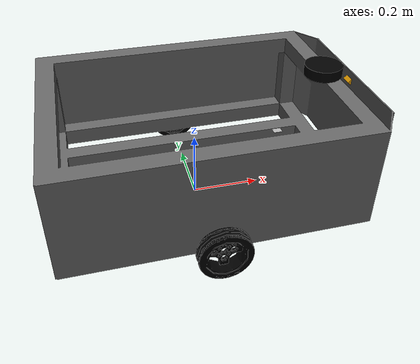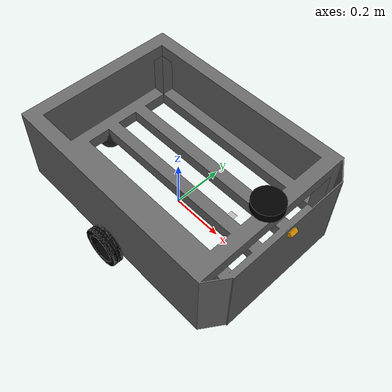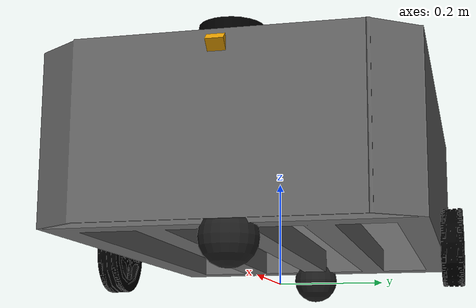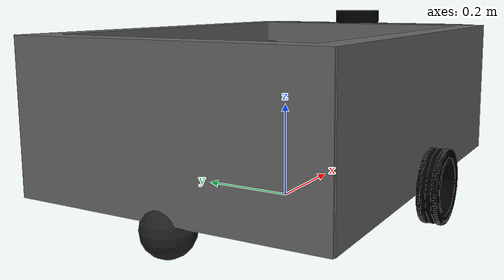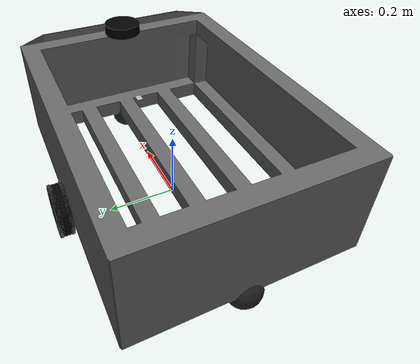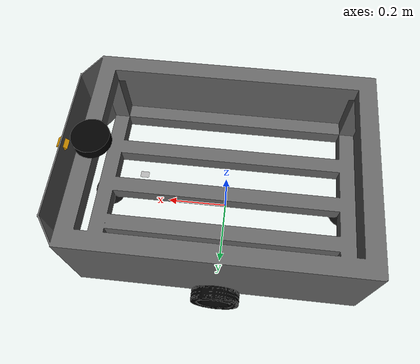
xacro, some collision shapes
<?xml version="1.0" ?>
<robot name="old_robot" xmlns:xacro="http://ros.org/wiki/xacro">

  <xacro:include filename="$(find old_robot_desc)/urdf/old_robot.gazebo.xacro"/>

  <material name="black">
      <color rgba="0.0 0.0 0.0 1.0"/>
  </material>

  <material name="dark">
    <color rgba="0.3 0.3 0.3 1.0"/>
  </material>
  <material name="light_black">
    <color rgba="0.4 0.4 0.4 1.0"/>
  </material>

  <material name="blue">
    <color rgba="0.0 0.0 0.8 1.0"/>
  </material>

  <material name="green">
    <color rgba="0.0 0.8 0.0 1.0"/>
  </material>

  <material name="grey">
    <color rgba="0.5 0.5 0.5 1.0"/>
  </material>

  <material name="red">
    <color rgba="0.8 0.0 0.0 1.0"/>
  </material>

  <material name="white">
    <color rgba="1.0 1.0 1.0 1.0"/>
  </material>

  <link name="base_footprint"/>

  <joint name="base_joint" type="fixed">
    <parent link="base_footprint"/>
    <child link="base_link"/>
    <origin xyz="0 0 0.085" rpy="0 0 0"/>
  </joint>

  <link name="base_link">
    <visual>
      <origin xyz="0 0 0.0" rpy="0 0 -1.57"/>
      <geometry>
        <mesh filename="package://old_robot_desc/meshes/base/old_chassis.stl" scale="0.001 0.001 0.001"/>
      </geometry>
      <material name="light_black"/>
    </visual>

    <collision>
      <origin xyz="0 0 0.047" rpy="0 0 0"/>
      <geometry>
        <box size="0.64 0.92 0.085"/>
      </geometry>
    </collision>

    <inertial>
      <origin xyz="0 0 0" rpy="0 0 0"/>
      <mass value="1.3729096e+00"/>
      <inertia ixx="8.7002718e-03" ixy="-4.7576583e-05" ixz="1.1160499e-04"
               iyy="8.6195418e-03" iyz="-3.5422299e-06"
               izz="1.4612727e-02" />
    </inertial>
  </link>

  <joint name="caster_back_joint" type="fixed">
    <parent link="base_link"/>
    <child link="caster_back_link"/>
    <origin xyz="-0.4 0.0 -0.043" rpy="0 0 0"/>
  </joint>

  <link name="caster_back_link">
    <visual>
      <origin xyz="0 0.001 0" rpy="0 0 0"/>
      <geometry>
        <sphere radius="0.05"/>
      </geometry>
    </visual>

    <collision>
      <origin xyz="0 0.001 0" rpy="0 0 0"/>
      <geometry>
        <sphere radius="0.05"/>
      </geometry>
    </collision>

    <inertial>
      <origin xyz="0 0 0" />
      <mass value="0.005" />
      <inertia ixx="0.001" ixy="0.0" ixz="0.0"
               iyy="0.001" iyz="0.0"
               izz="0.001" />
    </inertial>
  </link>

  <joint name="caster_forward_joint" type="fixed">
    <parent link="base_link"/>
    <child link="caster_forward_link"/>
    <origin xyz="0.4 0.0 -0.043" rpy="0 0 0"/>
  </joint>

  <link name="caster_forward_link">
    <visual>
      <origin xyz="0 0.001 0" rpy="0 0 0"/>
      <geometry>
        <sphere radius="0.05"/>
      </geometry>
    </visual>

    <collision>
      <origin xyz="0 0.001 0" rpy="0 0 0"/>
      <geometry>
        <sphere radius="0.05"/>
      </geometry>
    </collision>

    <inertial>
      <origin xyz="0 0 0" />
      <mass value="0.005" />
      <inertia ixx="0.001" ixy="0.0" ixz="0.0"
               iyy="0.001" iyz="0.0"
               izz="0.001" />
    </inertial>
  </link>

  <joint name="wheel_left_joint" type="continuous">
    <parent link="base_link"/>
    <child link="wheel_left_link"/>
    <origin xyz="0.0 0.338 -0.02" rpy="0 0 0"/>
    <axis xyz="0 0 1"/>
  </joint>

  <link name="wheel_left_link">
    <visual>
      <origin xyz="0 0 0" rpy="0 0 0"/>
      <geometry>
        <mesh filename="package://old_robot_desc/meshes/wheels/left_tire.stl" scale="0.001 0.001 0.001"/>
      </geometry>
      <material name="black"/>
    </visual>

    <collision>
      <origin xyz="0 0 0" rpy="0 0 0"/>
      <geometry>
        <cylinder length="0.036" radius="0.075"/>
      </geometry>
    </collision>

    <inertial>
      <origin xyz="0 0 0" />
      <mass value="2.8498940e-02" />
      <inertia ixx="1.1175580e-05" ixy="-4.2369783e-11" ixz="-5.9381719e-09"
               iyy="1.1192413e-05" iyz="-1.4400107e-11"
               izz="2.0712558e-05" />
      </inertial>
  </link>

  <joint name="wheel_right_joint" type="continuous">
    <parent link="base_link"/>
    <child link="wheel_right_link"/>
    <origin xyz="0.0 -0.338 -0.02" rpy="0 0 0"/>
    <axis xyz="0 0 1"/>
  </joint>

  <link name="wheel_right_link">
    <visual>
      <origin xyz="0 0 0" rpy="0 0 0"/>
      <geometry>
        <mesh filename="package://old_robot_desc/meshes/wheels/right_tire.stl" scale="0.001 0.001 0.001"/>
      </geometry>
      <material name="black"/>
    </visual>

    <collision>
      <origin xyz="0 0 0" rpy="0 0 0"/>
      <geometry>
        <cylinder length="0.036" radius="0.075"/>
      </geometry>
    </collision>

    <inertial>
      <origin xyz="0 0 0" />
      <mass value="2.8498940e-02" />
      <inertia ixx="1.1175580e-05" ixy="-4.2369783e-11" ixz="-5.9381719e-09"
               iyy="1.1192413e-05" iyz="-1.4400107e-11"
               izz="2.0712558e-05" />
      </inertial>
  </link>

  <joint name="scan_joint" type="fixed">
    <parent link="base_link"/>
    <child link="base_scan"/>
    <origin xyz="0.37 0.0 0.30" rpy="0 0 0"/>
  </joint>

  <link name="base_scan">
    <visual>
      <origin xyz="0 0 0.0" rpy="0 0 0"/>
      <geometry>
        <mesh filename="package://turtlebot3_description/meshes/sensors/lds.stl" scale="0.001 0.001 0.001"/>
      </geometry>
      <material name="black"/>
    </visual>

    <collision>
      <origin xyz="0.015 0 -0.0065" rpy="0 0 0"/>
      <geometry>
        <cylinder length="0.0315" radius="0.055"/>
      </geometry>
    </collision>

    <inertial>
      <mass value="0.114" />
      <origin xyz="0 0 0" />
      <inertia ixx="0.001" ixy="0.0" ixz="0.0"
               iyy="0.001" iyz="0.0"
               izz="0.001" />
    </inertial>
  </link>

  <joint name="imu_joint" type="fixed">
    <parent link="base_link"/>
    <child link="imu"/>
    <origin xyz="0.26 0 0.1" rpy="0 0 0"/>
  </joint>
  <link name="imu">
    <visual>
      <origin xyz="0 0 0.0" rpy="0 0 0"/>
      <geometry>
        <box size="0.027 0.02 0.0001"/>
      </geometry>

    </visual>

  </link>

  <joint name="camera_joint" type="fixed">
    <origin xyz="0.48 0.0 0.25" rpy="0.0 0.7853 0"/>
    <parent link="base_link"/>
    <child link="camera_link"/>
  </joint>

  <link name="camera_link">
    <visual>
      <origin xyz="0.0 0.0 0.0" rpy="0 0 0"/>
      <geometry>
        <box size="0.015 0.030 0.027"/>
      </geometry>
    </visual>

    <collision>
      <origin xyz="0.005 0.011 0.013" rpy="0 0 0"/>
      <geometry>
        <box size="0.015 0.030 0.027"/>
      </geometry>
    </collision>
  </link>

  <joint name="camera_rgb_joint" type="fixed">
    <origin xyz="0.003 0.011 0.009" rpy="0 0 0"/>
    <parent link="camera_link"/>
    <child link="camera_rgb_frame"/>
  </joint>
  <link name="camera_rgb_frame"/>

  <joint name="camera_rgb_optical_joint" type="fixed">
    <origin xyz="0 0 0" rpy="-1.57 0 -1.57"/>
    <parent link="camera_rgb_frame"/>
    <child link="camera_rgb_optical_frame"/>
  </joint>
  <link name="camera_rgb_optical_frame">
  </link>

</robot>
